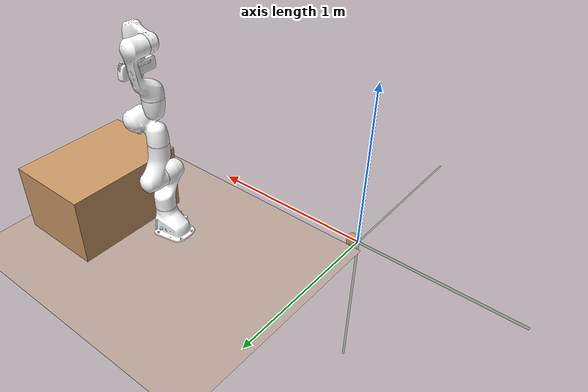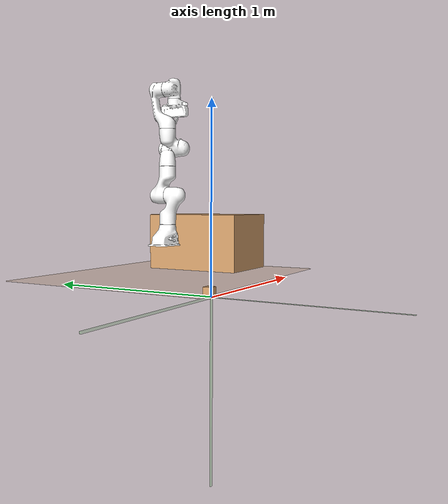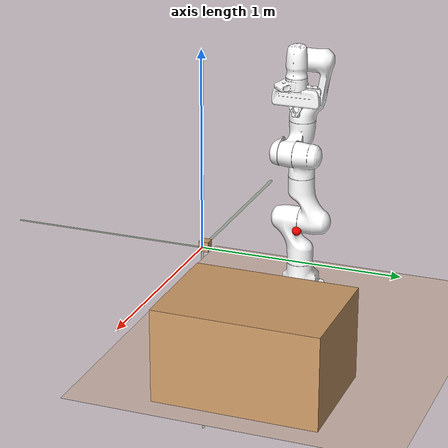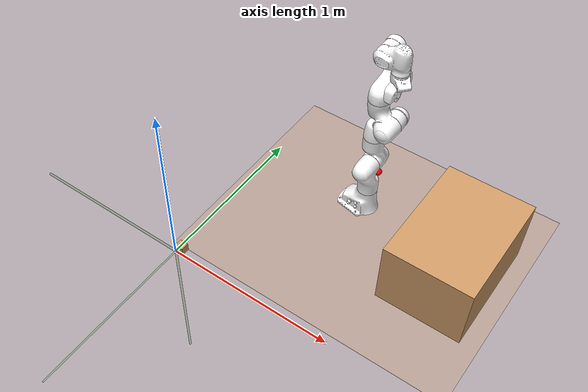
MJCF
<?xml version="1.0" encoding="utf-8"?>
<mujoco>
    <compiler inertiafromgeom="true" angle="radian" coordinate="local"/>

    <option timestep="0.002">
        <flag warmstart="enable"/>
    </option>

    <include file="common.xml"/>

    <worldbody>
        <geom name="floor0" pos="0.8 0.75 0" size="0.85 0.7 1" type="plane" condim="3" material="floor_mat"/>
        <body name="floor0" pos="0.8 0.75 0">
            <site name="target0" pos="0 0 0.5" size="0.02 0.02 0.02" rgba="1 0 0 1" type="sphere"/>
        </body>

        <!-- Motion capture cross used to control the robot -->
        <body mocap="true" name="robot:mocap" pos="0 0 0">
            <geom conaffinity="0" contype="0" pos="0 0 0" rgba="0 0.5 0 0.7" size="0.005 0.005 0.005" type="box"/>
            <geom conaffinity="0" contype="0" pos="0 0 0" rgba="0 0.5 0 0.1" size="1 0.005 0.005" type="box"/>
            <geom conaffinity="0" contype="0" pos="0 0 0" rgba="0 0.5 0 0.1" size="0.005 1 0.001" type="box"/>
            <geom conaffinity="0" contype="0" pos="0 0 0" rgba="0 0.5 0 0.1" size="0.005 0.005 1" type="box"/>
        </body>

        <!-- Insert robot into the world -->
        <body pos="0.75 0.75 0.2" euler="0 0 0">
            <include file="franka.xml"/>
        </body>

        <!-- Table workspace -->
		<body pos="1.3 0.75 0.2" name="table0">
            <geom size="0.25 0.35 0.2" type="box" mass="2000" material="table_mat"/>
		</body>

        <!-- Cube to push around -->
		<body name="object0" pos="0.025 0.025 0.025">
            <joint name="object0:joint" type="free" damping="0.01"/>
            <geom size="0.025 0.025 0.025" type="box" condim="3" name="object0" material="block_mat" mass="2"/>
            <site name="object0" pos="0 0 0" size="0.02 0.02 0.02" rgba="1 0 0 1" type="sphere"/>
		</body>

        <!-- Light source -->
        <light directional="true" ambient="0.2 0.2 0.2" diffuse="0.8 0.8 0.8" specular="0.3 0.3 0.3" castshadow="false" pos="0 0 4" dir="0 0 -1" name="light0"/>
    </worldbody>

    <actuator></actuator>
</mujoco>

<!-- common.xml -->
<mujoco>
    <default>
        <!-- Classes for various geometry objects for physical and visual properties -->
        <default class="collision">
            <geom contype="1" conaffinity="0" rgba="1 0 0 0.0"/>
        </default>
        <default class="visual">
            <geom contype="0" conaffinity="0" rgba="1 1 1 1"/>
        </default>

        <joint armature="0.1" damping="1"/>
        <geom conaffinity="1" condim="1" density="5.0" friction="1 0.5 0.5" margin="0.01" rgba="0.8 0.6 0.4 1"/>
        <motor ctrlrange="-1.0 1.0" ctrllimited="true"/>
    </default>

    <equality>
        <!-- Links default hand grippers together -->
        <joint name="robot:finger2" joint1="robot:finger1" joint2="robot:finger2" polycoef="0 -1 0 0 0"/>
        <weld body1="robot:mocap" body2="robot:hand" solimp="0.9 0.95 0.001" solref="0.02 1"/>
    </equality>

    <asset>
        <!-- Texture definitions -->
        <texture type="skybox" builtin="gradient" rgb1="0.44 0.85 0.56" rgb2="0.46 0.87 0.58" width="32" height="32"></texture>
        <texture name="texgeom" type="cube" builtin="flat" mark="cross" width="127" height="1278" rgb1="0.8 0.6 0.4" rgb2="0.8 0.6 0.4" markrgb="1 1 1" random="0.01"/>
        <texture name="texplane" type="2d" builtin="checker" rgb1="0.2 0.3 0.4" rgb2="0.1 0.15 0.2" width="512" height="512"/>

        <!-- Material definitions -->
        <material name="geom" texture="texgeom" texuniform="true"/>
        <material name="floor_mat" specular="0" shininess="0.5" reflectance="0" rgba="0.2 0.2 0.2 1"/>
        <material name="table_mat" specular="0" shininess="0.5" reflectance="0" rgba="0.93 0.93 0.93 1"/>
        <material name="block_mat" specular="0" shininess="0.5" reflectance="0" rgba="0.2 0.2 0.2 1"/>

        <!-- Collision geometry -->
        <mesh name="col_finger" file="collision/finger.stl"/>
        <mesh name="col_hand"   file="collision/hand.stl"/>
        <mesh name="col_link0"  file="collision/link0.stl"/>
        <mesh name="col_link1"  file="collision/link1.stl"/>
        <mesh name="col_link2"  file="collision/link2.stl"/>
        <mesh name="col_link3"  file="collision/link3.stl"/>
        <mesh name="col_link4"  file="collision/link4.stl"/>
        <mesh name="col_link5"  file="collision/link5.stl"/>
        <mesh name="col_link6"  file="collision/link6.stl"/>
        <mesh name="col_link7"  file="collision/link7.stl"/>

        <!-- Visualization geometry -->
        <mesh name="viz_finger" file="visual/finger.stl"/>
        <mesh name="viz_hand"   file="visual/hand.stl"/>
        <mesh name="viz_link0"  file="visual/link0.stl"/>
        <mesh name="viz_link1"  file="visual/link1.stl"/>
        <mesh name="viz_link2"  file="visual/link2.stl"/>
        <mesh name="viz_link3"  file="visual/link3.stl"/>
        <mesh name="viz_link4"  file="visual/link4.stl"/>
        <mesh name="viz_link5"  file="visual/link5.stl"/>
        <mesh name="viz_link6"  file="visual/link6.stl"/>
        <mesh name="viz_link7"  file="visual/link7.stl"/>
    </asset>

</mujoco>

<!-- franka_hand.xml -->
<mujoco>

    <body name="robot:hand" pos="0 0 0.107" euler="0 0 0" >
        <geom name="hand" mesh="col_hand" type="mesh" class="collision"/>
        <geom mesh="viz_hand" euler="-1.5707 0 0" type="mesh" class="visual"/>

        <body name="finger1" pos="0 0 0.0584" euler="0 0 0" >
            <joint name="robot:finger1" type="slide" axis="0 1 0" pos="0 0 0" range="0.0 0.04" />
            <geom name="finger1" mesh="col_finger" type="mesh" class="collision"/>
            <geom mesh="viz_finger" euler="1.5707 0 0" type="mesh" class="visual"/>
        </body>

        <body name="finger2" pos="0 0 0.0584" euler="0 0 -3.1415" >
            <joint name="robot:finger2" type="slide" axis="0 -1 0" pos="0 0 0" range="-0.04 0" />
            <geom name="finger2" mesh="col_finger" type="mesh" class="collision"/>
            <geom mesh="viz_finger" euler="1.5707 0 0" type="mesh" class="visual"/>
        </body>

        <site name="grip" pos="0.02 0 0" rgba="0 0 0 0" size="0.02 0.02 0.02"/>
    </body>

</mujoco>

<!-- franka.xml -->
<mujoco>
    <body name="link0" pos="0 0 0">
        <geom name="link0" mesh="col_link0" type="mesh" class="collision"/>
        <geom mesh="viz_link0" euler="-1.5707 0 0" type="mesh" class="visual"/>

        <body name="link1" pos="0 0 0.333">
            <joint name="robot:joint1" pos="0 0 -0.333" range="-2.8973 2.8973" axis="0 0 1"/>
            <geom name="link1" mesh="col_link1" type="mesh" class="collision"/>
            <geom mesh="viz_link1" euler="-1.5707 0 0" type="mesh" class="visual"/>

            <body name="link2" pos="0 0 0" euler="-1.5707 0 0" >
                <joint name="robot:joint2" pos="0 0 0" range="-1.7628 1.7628" axis="0 0 1"/>
                <geom name="link2" mesh="col_link2" type="mesh" class="collision"/>
                <geom mesh="viz_link2" euler="-1.5707 0 0" type="mesh" class="visual"/>

                <body name="link3" pos="0 -0.316 0" euler="1.5707 0 0" >
                    <joint name="robot:joint3" pos="0 0 -0.12" range="-2.8973 2.8973" axis="0 0 1"/>
                    <geom name="link3" mesh="col_link3" type="mesh" class="collision"/>
                    <geom mesh="viz_link3" euler="-1.5707 0 0" type="mesh" class="visual"/>

                    <body name="link4" pos="0.0825 0 0" euler="1.5707 0 0" >
                        <joint name="robot:joint4" pos="0 0 0" range="-3.0718 -0.0698" axis="0 0 1"/>
                        <geom name="link4" mesh="col_link4" type="mesh" class="collision"/>
                        <geom mesh="viz_link4" euler="-1.5707 0 0" type="mesh" class="visual"/>

                        <body name="link5" pos="-0.0825 0.384 0" euler="-1.5707 0 0" >
                            <joint name="robot:joint5" pos="0 0 -0.26" range="-2.8973 2.9873" axis="0 0 1"/>
                            <geom name="link5" mesh="col_link5" type="mesh" class="collision"/>
                            <geom mesh="viz_link5" euler="-1.5707 0 0" type="mesh" class="visual"/>

                            <body name="link6" pos="0 0 0" euler="1.5707 0 0" >
                                <joint name="robot:joint6" pos="0 0 0" range="-0.0175 3.7525" axis="0 0 1"/>
                                <geom name="link6" mesh="col_link6" type="mesh" class="collision"/>
                                <geom mesh="viz_link6" euler="-1.5707 0 0" type="mesh" class="visual"/>

                                <body name="link7" pos="0.088 0 0" euler="1.5707 0 0" >
                                    <joint name="robot:joint7" pos="0 0 0" range="-2.8973 2.9873" axis="0 0 1"/>
                                    <geom name="link7" mesh="col_link7" type="mesh" class="collision"/>
                                    <geom mesh="viz_link7" euler="-1.5707 0 0" type="mesh" class="visual"/>

                                    <include file="franka_hand.xml"/>
                                </body>
                            </body>
                        </body>
                    </body>
                </body>
            </body>
        </body>
    </body>
</mujoco>
